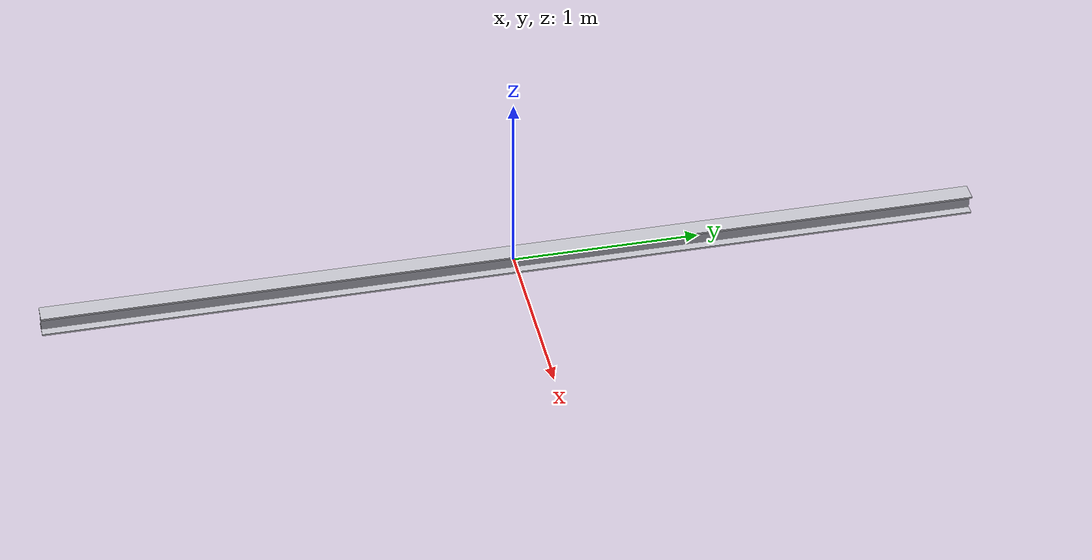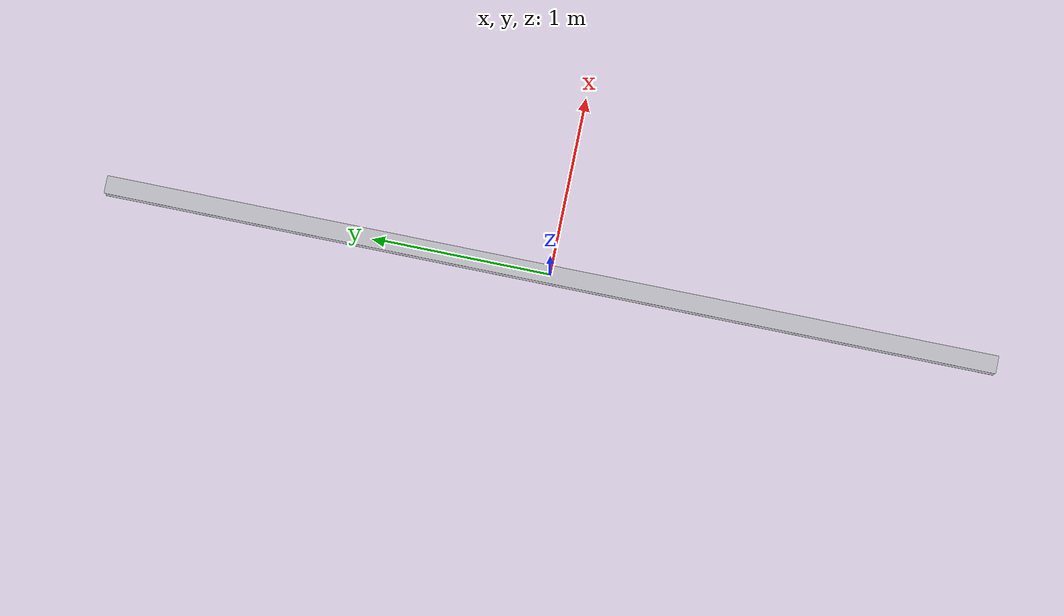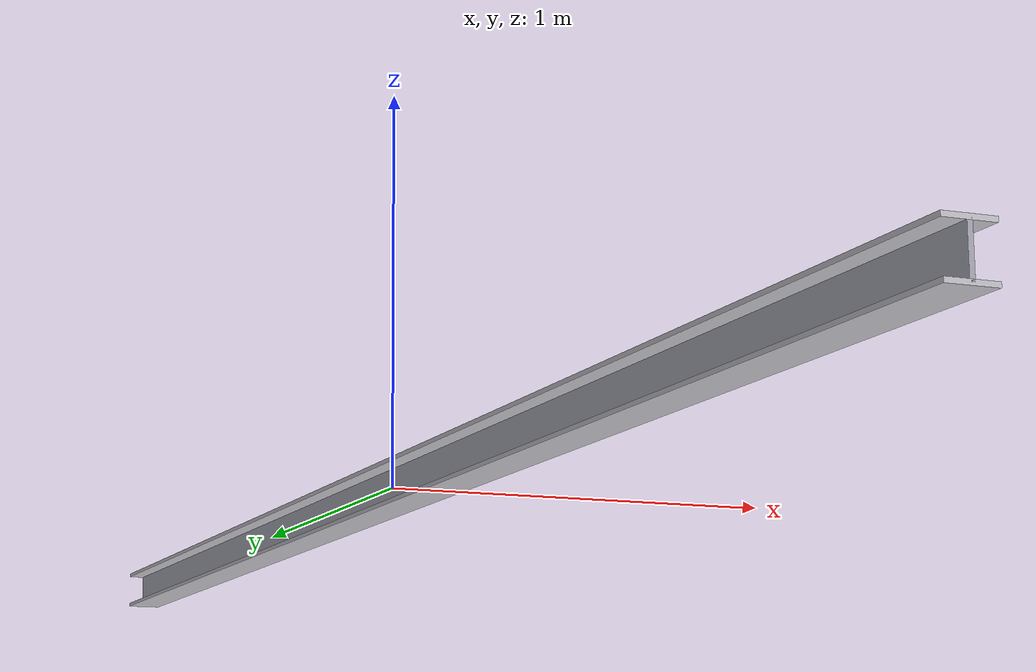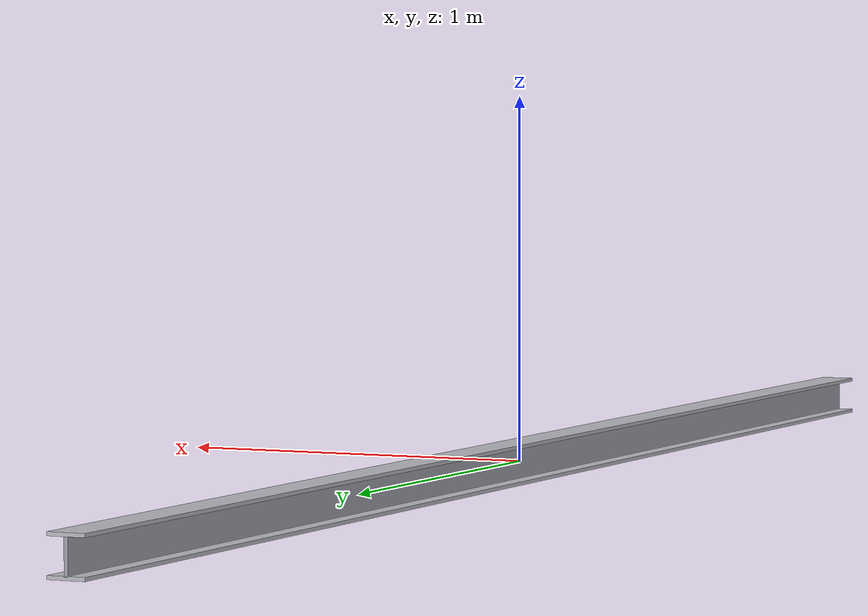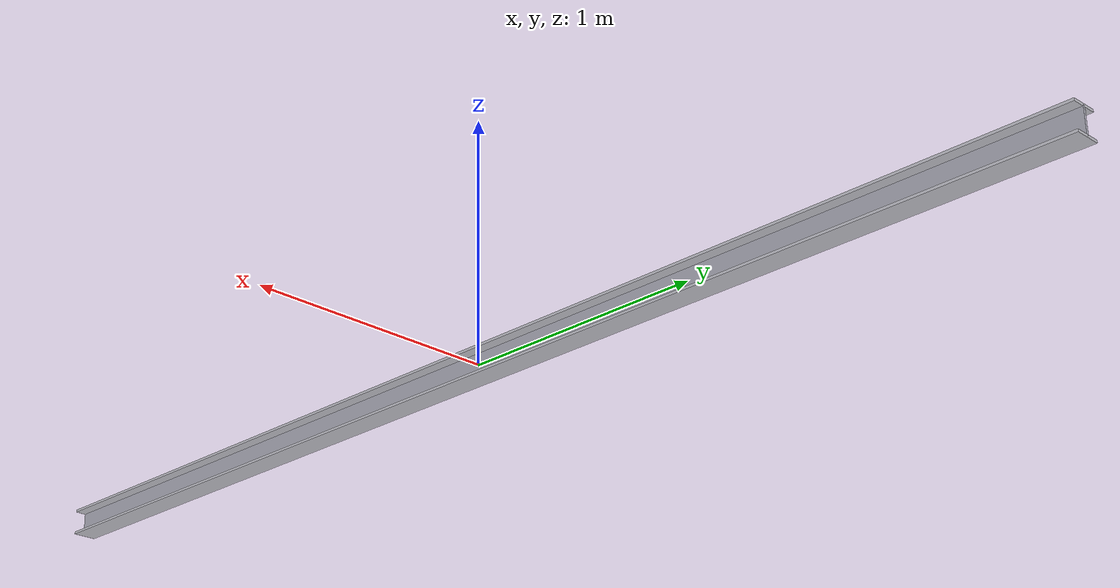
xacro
<?xml version="1.0"?>
<robot xmlns:xacro="http://www.ros.org/wiki/xacro" name="h_bar">

    <!-- Basic material / visualization controls -->
    <xacro:arg name="base_path" default="./"/>
    <xacro:arg name="full_visuals" default="true"/>

    <!-- Geometric parameters -->
    <!-- Vertical distance between top and bottom legs (center-to-center, along z) -->
    <xacro:arg name="leg_vertical_span" default="0.1"/>
    <!-- Length of each leg orthogonal to profile (along x by default after rotation) -->
    <xacro:arg name="leg_length" default="0.10"/>
    <!-- Thickness of beams along x (profile thickness) -->
    <xacro:arg name="thickness" default="0.01"/>
    <!-- Length of the beam profile along y (profile width) -->
    <xacro:arg name="profile_length" default="5.0"/>
    <!-- Mass of the entire H-bar (used for inertia) -->
    <xacro:arg name="mass" default="1.0"/>

    <!-- Derived properties -->
    <!-- Total vertical extent spanned by legs and crossbar (z) -->
    <xacro:property name="L_span" value="$(arg leg_vertical_span)"/>
    <!-- Leg length along their local z (maps to world x after rotation) -->
    <xacro:property name="L_leg" value="$(arg leg_length)"/>
    <!-- Beam thickness along x -->
    <xacro:property name="t" value="$(arg thickness)"/>
    <!-- Beam width along y -->
    <xacro:property name="w" value="$(arg profile_length)"/>
    <xacro:property name="m_total" value="$(arg mass)"/>

    <!-- Split mass roughly equally between three beams -->
    <xacro:property name="m_beam" value="${m_total / 3.0}"/>

    <!-- Simple box inertia helper for a box aligned with axes -->
    <xacro:macro name="box_inertia" params="m sx sy sz">
        <inertia
            ixx="${1.0/12.0 * m * (sy*sy + sz*sz)}"
            iyy="${1.0/12.0 * m * (sx*sx + sz*sz)}"
            izz="${1.0/12.0 * m * (sx*sx + sy*sy)}"
            ixy="0.0" ixz="0.0" iyz="0.0"/>
    </xacro:macro>

    <!-- Macro that instantiates a standalone H-bar at given pose -->
    <xacro:macro name="h_bar" params="xyz rpy">
        <link name="world"/>

        <!-- Bottom leg (aligned with z-axis after rotation, below origin) -->
        <link name="hbar_bottom_leg">
            <visual>
                <origin xyz="0 0 0" rpy="0 1.57079633 0"/>
                <geometry>
                    <!-- thickness x, profile width y, leg length along local z -->
                    <box size="${t} ${w} ${L_leg}"/>
                </geometry>
                <xacro:if value="$(arg full_visuals)">
                    <material name="hbar_material_bottom">
                        <!-- Brushed steel-like gray -->
                        <color rgba="0.75 0.75 0.78 1.0"/>
                    </material>
                </xacro:if>
            </visual>
            <collision>
                <origin xyz="0 0 0" rpy="0 1.57079633 0"/>
                <geometry>
                    <box size="${t} ${w} ${L_leg}"/>
                </geometry>
            </collision>
            <inertial>
                <origin xyz="0 0 0" rpy="0 0 0"/>
                <mass value="${m_beam}"/>
                <xacro:box_inertia m="${m_beam}" sx="${t}" sy="${w}" sz="${L_leg}"/>
            </inertial>
        </link>

        <!-- Top leg (aligned with z-axis after rotation, above origin) -->
        <link name="hbar_top_leg">
            <visual>
                <origin xyz="0 0 0" rpy="0 1.57079633 0"/>
                <geometry>
                    <box size="${t} ${w} ${L_leg}"/>
                </geometry>
                <xacro:if value="$(arg full_visuals)">
                    <material name="hbar_material_top">
                        <!-- Brushed steel-like gray -->
                        <color rgba="0.75 0.75 0.78 1.0"/>
                    </material>
                </xacro:if>
            </visual>
            <collision>
                <origin xyz="0 0 0" rpy="0 1.57079633 0"/>
                <geometry>
                    <box size="${t} ${w} ${L_leg}"/>
                </geometry>
            </collision>
            <inertial>
                <origin xyz="0 0 0" rpy="0 0 0"/>
                <mass value="${m_beam}"/>
                <xacro:box_inertia m="${m_beam}" sx="${t}" sy="${w}" sz="${L_leg}"/>
            </inertial>
        </link>

        <!-- Crossbar: vertical (aligned with z-axis) at the origin -->
        <link name="hbar_crossbar">
            <visual>
                <!-- Thickness in x,y, length in z -->
                <origin xyz="0 0 0" rpy="0 0 0"/>
                <geometry>
                    <box size="${t} ${w} ${L_span}"/>
                </geometry>
                <xacro:if value="$(arg full_visuals)">
                    <material name="hbar_material_cross">
                        <!-- Slightly darker steel for visual contrast -->
                        <color rgba="0.65 0.65 0.7 1.0"/>
                    </material>
                </xacro:if>
            </visual>
            <collision>
                <origin xyz="0 0 0" rpy="0 0 0"/>
                <geometry>
                    <box size="${t} ${w} ${L_span}"/>
                </geometry>
            </collision>
            <inertial>
                <origin xyz="0 0 0" rpy="0 0 0"/>
                <mass value="${m_beam}"/>
                <xacro:box_inertia m="${m_beam}" sx="${t}" sy="${w}" sz="${L_span}"/>
            </inertial>
        </link>

        <!-- Fix crossbar to world; its center is at the macro pose -->
        <joint name="hbar_cross_fix" type="fixed">
            <parent link="world"/>
            <child link="hbar_crossbar"/>
            <origin xyz="${xyz}" rpy="${rpy}"/>
        </joint>

        <!-- Top leg: translated +L_leg/2 in x and +L_span/2 in z relative to crossbar -->
        <joint name="hbar_top_fix" type="fixed">
            <parent link="hbar_crossbar"/>
            <child link="hbar_top_leg"/>
            <origin xyz="0 0 ${0.5*L_span}" rpy="0 0.0 0"/>
        </joint>

        <!-- Bottom leg: translated +L_leg/2 in x and -L_span/2 in z relative to crossbar -->
        <joint name="hbar_bottom_fix" type="fixed">
            <parent link="hbar_crossbar"/>
            <child link="hbar_bottom_leg"/>
            <origin xyz="0 0 ${-0.5*L_span}" rpy="0 0 0"/>
        </joint>
    </xacro:macro>

    <!-- Instantiate a default H-bar at origin -->
    <xacro:h_bar xyz="0 0 0" rpy="0 0 0"/>

</robot>
